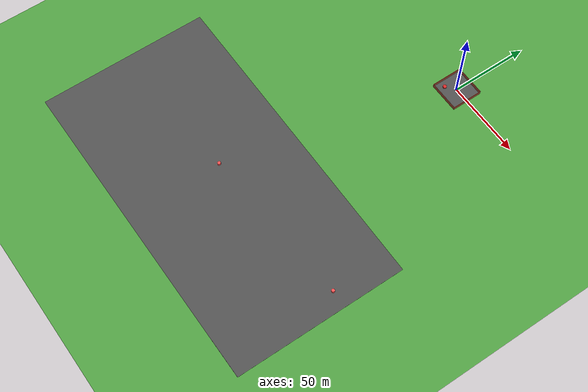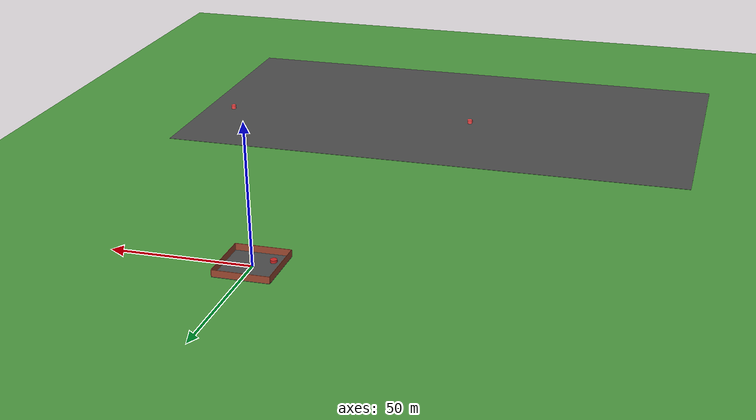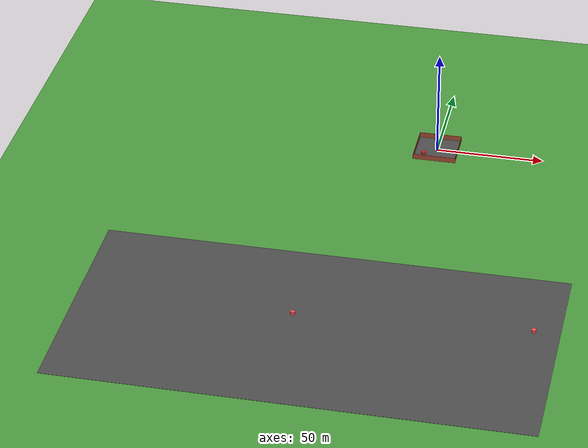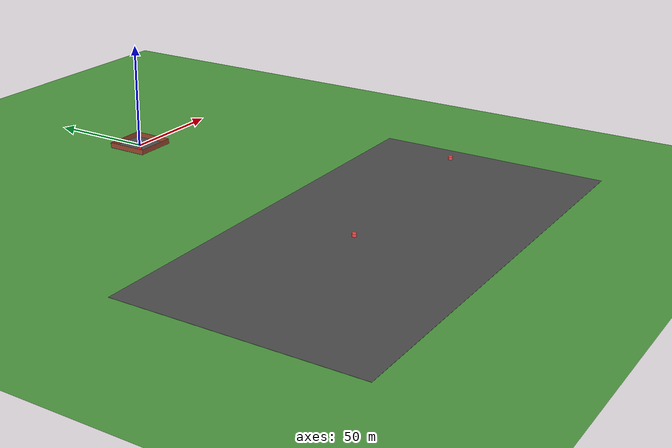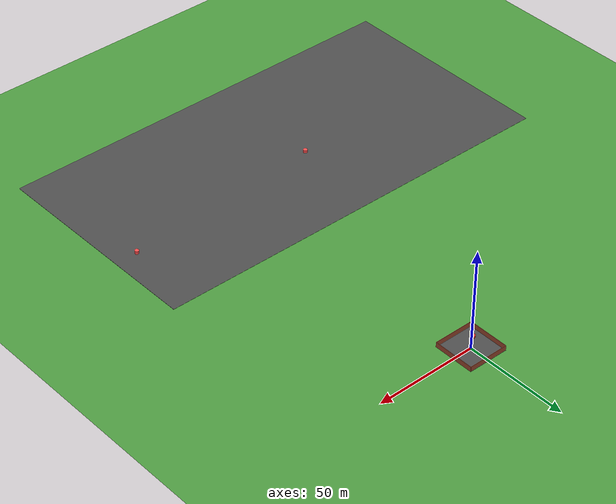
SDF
<sdf version="1.7">
 <world name="default">
  <light name="sun" type="directional">
   <pose>0 0 10 0 -0 0</pose>
   <diffuse>0.8 0.8 0.8 1</diffuse>
   <specular>0.2 0.2 0.2 1</specular>
   <attenuation>
    <range>1000</range>
    <constant>0.9</constant>
    <linear>0.01</linear>
    <quadratic>0.001</quadratic>
   </attenuation>
   <direction>-0.5 0.1 -0.9</direction>
   <spot><inner_angle>0</inner_angle><outer_angle>0</outer_angle><falloff>0</falloff></spot>
  </light>
  <model name="ground_plane">
   <static>1</static>
   <link name="link">
    <collision name="collision">
     <geometry><plane><normal>0 0 1</normal><size>400 400</size></plane></geometry>
     <surface><friction><ode><mu>100</mu><mu2>50</mu2></ode></friction></surface>
    </collision>
    <visual name="visual">
     <cast_shadows>0</cast_shadows>
     <geometry><plane><normal>0 0 1</normal><size>400 400</size></plane></geometry>
     <material>
      <script><uri>file://media/materials/scripts/gazebo.material</uri><name>Gazebo/Grass</name></script>
     </material>
    </visual>
   </link>
  </model>
  <gravity>0 0 -9.8</gravity>
  <magnetic_field>6e-06 2.3e-05 -4.2e-05</magnetic_field>
  <atmosphere type="adiabatic"/>
  <physics type="ode">
   <max_step_size>0.001</max_step_size>
   <real_time_factor>1</real_time_factor>
   <real_time_update_rate>1000</real_time_update_rate>
  </physics>
  <scene><ambient>0.4 0.4 0.4 1</ambient><background>0.0 0.7 0.7 1</background><shadows>1</shadows></scene>
  <audio><device>default</device></audio>
  <spherical_coordinates>
   <surface_model>EARTH_WGS84</surface_model>
   <latitude_deg>0</latitude_deg>
   <longitude_deg>0</longitude_deg>
   <elevation>0</elevation>
   <heading_deg>0</heading_deg>
  </spherical_coordinates>
  <model name="asphalt_plane">
   <static>1</static>
   <link name="link">
    <collision name="collision"><geometry><box><size>20 20 0.1</size></box></geometry></collision>
    <visual name="visual">
     <cast_shadows>0</cast_shadows>
     <geometry><box><size>20 20 0.1</size></box></geometry>
     <material>
      <script>
       <uri>model://asphalt_plane/materials/scripts</uri>
       <uri>model://asphalt_plane/materials/textures</uri>
       <name>vrc/asphalt</name>
      </script>
     </material>
    </visual>
   </link>
   <pose>0.027118 -0.028406 0 0 -0 0</pose>
  </model>
  <model name="asphalt_plane_0">
   <static>1</static>
   <link name="link">
    <collision name="collision"><geometry><box><size>209.027 109.703 0.1</size></box></geometry></collision>
    <visual name="visual">
     <cast_shadows>0</cast_shadows>
     <geometry><box><size>209.027 109.703 0.1</size></box></geometry>
     <material>
      <script>
       <uri>model://asphalt_plane/materials/scripts</uri>
       <uri>model://asphalt_plane/materials/textures</uri>
       <name>vrc/asphalt</name>
      </script>
     </material>
    </visual>
   </link>
   <pose>-28.7074 -152.782 0 0 -0 0</pose>
  </model>
  <model name="unit_cylinder_0">
   <link name="link">
    <inertial>
     <mass>39516.4</mass>
     <inertia><ixx>19083</ixx><ixy>0</ixy><ixz>0</ixz><iyy>19083</iyy><iyz>0</iyz><izz>31579.8</izz></inertia>
    </inertial>
    <visual name="visual">
     <geometry><cylinder><radius>1.19</radius><length>1</length></cylinder></geometry>
     <material>
      <script><name>Gazebo/RedBright</name><uri>file://media/materials/scripts/gazebo.material</uri></script>
      <shader type="pixel"><normal_map>__default__</normal_map></shader>
      <ambient>1 0.3 0.3 1</ambient>
      <diffuse>0.7 0.7 0.7 1</diffuse>
      <specular>0.01 0.01 0.01 1</specular>
      <emissive>0 0 0 1</emissive>
     </material>
    </visual>
    <collision name="collision">
     <geometry><cylinder><radius>1.26425</radius><length>1</length></cylinder></geometry>
     <surface>
      <friction>
       <ode><mu>1</mu><mu2>1</mu2><fdir1>0 0 0</fdir1><slip1>0</slip1><slip2>0</slip2></ode>
       <torsional>
        <coefficient>1</coefficient>
        <patch_radius>0</patch_radius>
        <surface_radius>0</surface_radius>
        <use_patch_radius>1</use_patch_radius>
        <ode><slip>0</slip></ode>
       </torsional>
      </friction>
      <bounce><restitution_coefficient>0</restitution_coefficient><threshold>1e+06</threshold></bounce>
      <contact>
       <collide_without_contact>0</collide_without_contact>
       <collide_without_contact_bitmask>1</collide_without_contact_bitmask>
       <collide_bitmask>1</collide_bitmask>
       <ode>
        <soft_cfm>0</soft_cfm>
        <soft_erp>0.2</soft_erp>
        <kp>1e+13</kp>
        <kd>1</kd>
        <max_vel>0.01</max_vel>
        <min_depth>0</min_depth>
       </ode>
       <bullet>
        <split_impulse>1</split_impulse>
        <split_impulse_penetration_threshold>-0.01</split_impulse_penetration_threshold>
        <soft_cfm>0</soft_cfm>
        <soft_erp>0.2</soft_erp>
        <kp>1e+13</kp>
        <kd>1</kd>
       </bullet>
      </contact>
     </surface>
    </collision>
   </link>
   <static>0</static>
   <pose>-5.60067 -4.63754 0.549992 0 -1e-06 1.9e-05</pose>
  </model>
  <model name="unit_cylinder">
   <link name="link">
    <inertial>
     <mass>14.2503</mass>
     <inertia><ixx>17.6033</ixx><ixy>0</ixy><ixz>0</ixz><iyy>17.6033</iyy><iyz>0</iyz><izz>7.42155</izz></inertia>
    </inertial>
    <visual name="visual">
     <geometry><cylinder><radius>1.02059</radius><length>1.41793</length></cylinder></geometry>
     <material>
      <script><name>Gazebo/Grey</name><uri>file://media/materials/scripts/gazebo.material</uri></script>
      <shader type="pixel"><normal_map>__default__</normal_map></shader>
      <ambient>1 0.3 0.3 1</ambient>
      <diffuse>0.7 0.7 0.7 1</diffuse>
      <specular>0.01 0.01 0.01 1</specular>
      <emissive>0 0 0 1</emissive>
     </material>
    </visual>
    <collision name="collision">
     <geometry><cylinder><radius>1.02059</radius><length>1.41793</length></cylinder></geometry>
     <surface>
      <friction>
       <ode><mu>1</mu><mu2>1</mu2><fdir1>0 0 0</fdir1><slip1>0</slip1><slip2>0</slip2></ode>
       <torsional>
        <coefficient>1</coefficient>
        <patch_radius>0</patch_radius>
        <surface_radius>0</surface_radius>
        <use_patch_radius>1</use_patch_radius>
        <ode><slip>0</slip></ode>
       </torsional>
      </friction>
      <bounce><restitution_coefficient>0</restitution_coefficient><threshold>1e+06</threshold></bounce>
      <contact>
       <collide_without_contact>0</collide_without_contact>
       <collide_without_contact_bitmask>1</collide_without_contact_bitmask>
       <collide_bitmask>1</collide_bitmask>
       <ode>
        <soft_cfm>0</soft_cfm>
        <soft_erp>0.2</soft_erp>
        <kp>1e+13</kp>
        <kd>1</kd>
        <max_vel>0.01</max_vel>
        <min_depth>0</min_depth>
       </ode>
       <bullet>
        <split_impulse>1</split_impulse>
        <split_impulse_penetration_threshold>-0.01</split_impulse_penetration_threshold>
        <soft_cfm>0</soft_cfm>
        <soft_erp>0.2</soft_erp>
        <kp>1e+13</kp>
        <kd>1</kd>
       </bullet>
      </contact>
     </surface>
    </collision>
   </link>
   <static>0</static>
   <pose>-38.3769 -145.043 0.758973 2e-06 -5e-06 -0.001093</pose>
  </model>
  <model name="unit_cylinder_1">
   <link name="link">
    <inertial>
     <mass>14.2503</mass>
     <inertia><ixx>17.6033</ixx><ixy>0</ixy><ixz>0</ixz><iyy>17.6033</iyy><iyz>0</iyz><izz>7.42155</izz></inertia>
    </inertial>
    <visual name="visual">
     <geometry><cylinder><radius>1.02059</radius><length>1.50349</length></cylinder></geometry>
     <material>
      <script><name>Gazebo/Grey</name><uri>file://media/materials/scripts/gazebo.material</uri></script>
      <shader type="pixel"><normal_map>__default__</normal_map></shader>
      <ambient>1 0.3 0.3 1</ambient>
      <diffuse>0.7 0.7 0.7 1</diffuse>
      <specular>0.01 0.01 0.01 1</specular>
      <emissive>0 0 0 1</emissive>
     </material>
    </visual>
    <collision name="collision">
     <geometry><cylinder><radius>1.02059</radius><length>1.50349</length></cylinder></geometry>
     <surface>
      <friction>
       <ode><mu>1</mu><mu2>1</mu2><fdir1>0 0 0</fdir1><slip1>0</slip1><slip2>0</slip2></ode>
       <torsional>
        <coefficient>1</coefficient>
        <patch_radius>0</patch_radius>
        <surface_radius>0</surface_radius>
        <use_patch_radius>1</use_patch_radius>
        <ode><slip>0</slip></ode>
       </torsional>
      </friction>
      <bounce><restitution_coefficient>0</restitution_coefficient><threshold>1e+06</threshold></bounce>
      <contact>
       <collide_without_contact>0</collide_without_contact>
       <collide_without_contact_bitmask>1</collide_without_contact_bitmask>
       <collide_bitmask>1</collide_bitmask>
       <ode>
        <soft_cfm>0</soft_cfm>
        <soft_erp>0.2</soft_erp>
        <kp>1e+13</kp>
        <kd>1</kd>
        <max_vel>0.01</max_vel>
        <min_depth>0</min_depth>
       </ode>
       <bullet>
        <split_impulse>1</split_impulse>
        <split_impulse_penetration_threshold>-0.01</split_impulse_penetration_threshold>
        <soft_cfm>0</soft_cfm>
        <soft_erp>0.2</soft_erp>
        <kp>1e+13</kp>
        <kd>1</kd>
       </bullet>
      </contact>
     </surface>
    </collision>
   </link>
   <static>0</static>
   <pose>64.4085 -137.305 0.801747 3e-06 1e-06 -0.006748</pose>
  </model>
  <model name="4Walls">
   <link name="Wall_17">
    <pose>0 -9.925 0 0 -0 0</pose>
    <inertial>
     <mass>1</mass>
     <inertia><ixx>1</ixx><ixy>0</ixy><ixz>0</ixz><iyy>1</iyy><iyz>0</iyz><izz>1</izz></inertia>
    </inertial>
    <visual name="Wall_17_Visual">
     <pose>0 0 1.25 0 -0 0</pose>
     <geometry><box><size>20 0.15 2.5</size></box></geometry>
     <material>
      <script><uri>file://media/materials/scripts/gazebo.material</uri><name>Gazebo/Bricks</name></script>
      <ambient>1 1 1 1</ambient>
      <shader type="pixel"><normal_map>__default__</normal_map></shader>
      <diffuse>1 1 1 1</diffuse>
      <specular>0.2 0.2 0.2 1</specular>
      <emissive>0 0 0 1</emissive>
     </material>
     <meta><layer>0</layer></meta>
    </visual>
    <collision name="Wall_17_Collision">
     <pose>0 0 1.25 0 -0 0</pose>
     <geometry><box><size>20 0.15 2.5</size></box></geometry>
     <surface>
      <friction>
       <ode><mu>1</mu><mu2>1</mu2><fdir1>0 0 0</fdir1><slip1>0</slip1><slip2>0</slip2></ode>
       <torsional>
        <coefficient>1</coefficient>
        <patch_radius>0</patch_radius>
        <surface_radius>0</surface_radius>
        <use_patch_radius>1</use_patch_radius>
        <ode><slip>0</slip></ode>
       </torsional>
      </friction>
      <bounce><restitution_coefficient>0</restitution_coefficient><threshold>1e+06</threshold></bounce>
      <contact>
       <collide_without_contact>0</collide_without_contact>
       <collide_without_contact_bitmask>1</collide_without_contact_bitmask>
       <collide_bitmask>1</collide_bitmask>
       <ode>
        <soft_cfm>0</soft_cfm>
        <soft_erp>0.2</soft_erp>
        <kp>1e+13</kp>
        <kd>1</kd>
        <max_vel>0.01</max_vel>
        <min_depth>0</min_depth>
       </ode>
       <bullet>
        <split_impulse>1</split_impulse>
        <split_impulse_penetration_threshold>-0.01</split_impulse_penetration_threshold>
        <soft_cfm>0</soft_cfm>
        <soft_erp>0.2</soft_erp>
        <kp>1e+13</kp>
        <kd>1</kd>
       </bullet>
      </contact>
     </surface>
    </collision>
   </link>
   <link name="Wall_19">
    <pose>9.925 0 0 0 -0 1.5708</pose>
    <inertial>
     <mass>1</mass>
     <inertia><ixx>1</ixx><ixy>0</ixy><ixz>0</ixz><iyy>1</iyy><iyz>0</iyz><izz>1</izz></inertia>
    </inertial>
    <visual name="Wall_19_Visual">
     <pose>0 0 1.25 0 -0 0</pose>
     <geometry><box><size>20 0.15 2.5</size></box></geometry>
     <material>
      <script><uri>file://media/materials/scripts/gazebo.material</uri><name>Gazebo/Bricks</name></script>
      <ambient>1 1 1 1</ambient>
      <shader type="pixel"><normal_map>__default__</normal_map></shader>
      <diffuse>1 1 1 1</diffuse>
      <specular>0.2 0.2 0.2 1</specular>
      <emissive>0 0 0 1</emissive>
     </material>
     <meta><layer>0</layer></meta>
    </visual>
    <collision name="Wall_19_Collision">
     <pose>0 0 1.25 0 -0 0</pose>
     <geometry><box><size>20 0.15 2.5</size></box></geometry>
     <surface>
      <friction>
       <ode><mu>1</mu><mu2>1</mu2><fdir1>0 0 0</fdir1><slip1>0</slip1><slip2>0</slip2></ode>
       <torsional>
        <coefficient>1</coefficient>
        <patch_radius>0</patch_radius>
        <surface_radius>0</surface_radius>
        <use_patch_radius>1</use_patch_radius>
        <ode><slip>0</slip></ode>
       </torsional>
      </friction>
      <bounce><restitution_coefficient>0</restitution_coefficient><threshold>1e+06</threshold></bounce>
      <contact>
       <collide_without_contact>0</collide_without_contact>
       <collide_without_contact_bitmask>1</collide_without_contact_bitmask>
       <collide_bitmask>1</collide_bitmask>
       <ode>
        <soft_cfm>0</soft_cfm>
        <soft_erp>0.2</soft_erp>
        <kp>1e+13</kp>
        <kd>1</kd>
        <max_vel>0.01</max_vel>
        <min_depth>0</min_depth>
       </ode>
       <bullet>
        <split_impulse>1</split_impulse>
        <split_impulse_penetration_threshold>-0.01</split_impulse_penetration_threshold>
        <soft_cfm>0</soft_cfm>
        <soft_erp>0.2</soft_erp>
        <kp>1e+13</kp>
        <kd>1</kd>
       </bullet>
      </contact>
     </surface>
    </collision>
   </link>
   <link name="Wall_21">
    <pose>0 9.925 0 0 -0 3.14159</pose>
    <inertial>
     <mass>1</mass>
     <inertia><ixx>1</ixx><ixy>0</ixy><ixz>0</ixz><iyy>1</iyy><iyz>0</iyz><izz>1</izz></inertia>
    </inertial>
    <visual name="Wall_21_Visual">
     <pose>0 0 1.25 0 -0 0</pose>
     <geometry><box><size>20 0.15 2.5</size></box></geometry>
     <material>
      <script><uri>file://media/materials/scripts/gazebo.material</uri><name>Gazebo/Bricks</name></script>
      <ambient>1 1 1 1</ambient>
      <shader type="pixel"><normal_map>__default__</normal_map></shader>
      <diffuse>1 1 1 1</diffuse>
      <specular>0.2 0.2 0.2 1</specular>
      <emissive>0 0 0 1</emissive>
     </material>
     <meta><layer>0</layer></meta>
    </visual>
    <collision name="Wall_21_Collision">
     <pose>0 0 1.25 0 -0 0</pose>
     <geometry><box><size>20 0.15 2.5</size></box></geometry>
     <surface>
      <friction>
       <ode><mu>1</mu><mu2>1</mu2><fdir1>0 0 0</fdir1><slip1>0</slip1><slip2>0</slip2></ode>
       <torsional>
        <coefficient>1</coefficient>
        <patch_radius>0</patch_radius>
        <surface_radius>0</surface_radius>
        <use_patch_radius>1</use_patch_radius>
        <ode><slip>0</slip></ode>
       </torsional>
      </friction>
      <bounce><restitution_coefficient>0</restitution_coefficient><threshold>1e+06</threshold></bounce>
      <contact>
       <collide_without_contact>0</collide_without_contact>
       <collide_without_contact_bitmask>1</collide_without_contact_bitmask>
       <collide_bitmask>1</collide_bitmask>
       <ode>
        <soft_cfm>0</soft_cfm>
        <soft_erp>0.2</soft_erp>
        <kp>1e+13</kp>
        <kd>1</kd>
        <max_vel>0.01</max_vel>
        <min_depth>0</min_depth>
       </ode>
       <bullet>
        <split_impulse>1</split_impulse>
        <split_impulse_penetration_threshold>-0.01</split_impulse_penetration_threshold>
        <soft_cfm>0</soft_cfm>
        <soft_erp>0.2</soft_erp>
        <kp>1e+13</kp>
        <kd>1</kd>
       </bullet>
      </contact>
     </surface>
    </collision>
   </link>
   <link name="Wall_22">
    <pose>-9.925 0 0 0 0 -1.5708</pose>
    <inertial>
     <mass>1</mass>
     <inertia><ixx>1</ixx><ixy>0</ixy><ixz>0</ixz><iyy>1</iyy><iyz>0</iyz><izz>1</izz></inertia>
    </inertial>
    <visual name="Wall_22_Visual">
     <pose>0 0 1.25 0 -0 0</pose>
     <geometry><box><size>20 0.15 2.5</size></box></geometry>
     <material>
      <script><uri>file://media/materials/scripts/gazebo.material</uri><name>Gazebo/Bricks</name></script>
      <ambient>1 1 1 1</ambient>
      <shader type="pixel"><normal_map>__default__</normal_map></shader>
      <diffuse>1 1 1 1</diffuse>
      <specular>0.2 0.2 0.2 1</specular>
      <emissive>0 0 0 1</emissive>
     </material>
     <meta><layer>0</layer></meta>
    </visual>
    <collision name="Wall_22_Collision">
     <pose>0 0 1.25 0 -0 0</pose>
     <geometry><box><size>20 0.15 2.5</size></box></geometry>
     <surface>
      <friction>
       <ode><mu>1</mu><mu2>1</mu2><fdir1>0 0 0</fdir1><slip1>0</slip1><slip2>0</slip2></ode>
       <torsional>
        <coefficient>1</coefficient>
        <patch_radius>0</patch_radius>
        <surface_radius>0</surface_radius>
        <use_patch_radius>1</use_patch_radius>
        <ode><slip>0</slip></ode>
       </torsional>
      </friction>
      <bounce><restitution_coefficient>0</restitution_coefficient><threshold>1e+06</threshold></bounce>
      <contact>
       <collide_without_contact>0</collide_without_contact>
       <collide_without_contact_bitmask>1</collide_without_contact_bitmask>
       <collide_bitmask>1</collide_bitmask>
       <ode>
        <soft_cfm>0</soft_cfm>
        <soft_erp>0.2</soft_erp>
        <kp>1e+13</kp>
        <kd>1</kd>
        <max_vel>0.01</max_vel>
        <min_depth>0</min_depth>
       </ode>
       <bullet>
        <split_impulse>1</split_impulse>
        <split_impulse_penetration_threshold>-0.01</split_impulse_penetration_threshold>
        <soft_cfm>0</soft_cfm>
        <soft_erp>0.2</soft_erp>
        <kp>1e+13</kp>
        <kd>1</kd>
       </bullet>
      </contact>
     </surface>
    </collision>
   </link>
   <static>1</static>
   <pose>0.075 -0.075 0 0 -0 0</pose>
  </model>
 </world>
</sdf>
